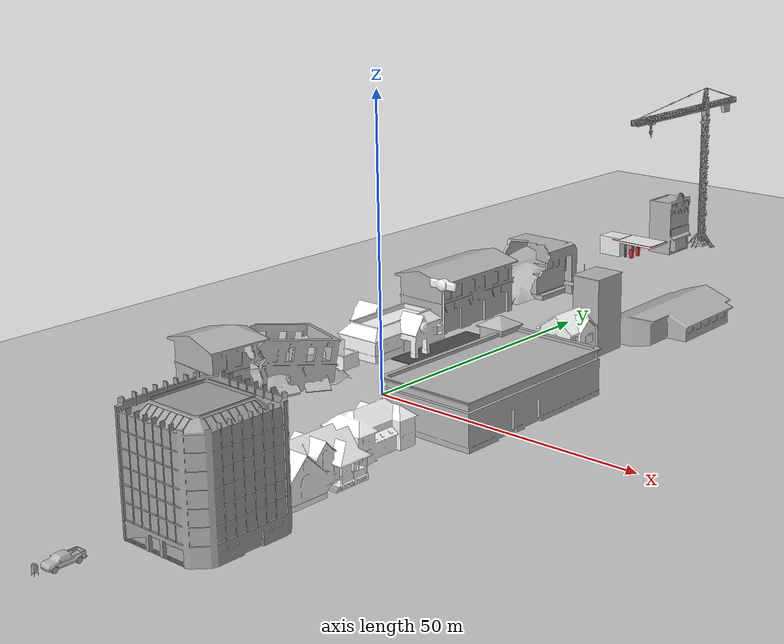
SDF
<sdf version="1.6">
 <world name="default">
  <light name="sun" type="directional">
   <pose>0 0 10 0 -0 0</pose>
   <diffuse>0.8 0.8 0.8 1</diffuse>
   <specular>0.2 0.2 0.2 1</specular>
   <attenuation>
    <range>1000</range>
    <constant>0.9</constant>
    <linear>0.01</linear>
    <quadratic>0.001</quadratic>
   </attenuation>
   <direction>-0.5 0.1 -0.9</direction>
  </light>
  <model name="ground_plane">
   <static>1</static>
   <link name="link">
    <collision name="collision">
     <geometry><plane><normal>0 0 1</normal><size>100 100</size></plane></geometry>
     <surface>
      <contact><collide_bitmask>65535</collide_bitmask></contact>
      <friction><ode><mu>100</mu><mu2>50</mu2></ode></friction>
     </surface>
    </collision>
    <visual name="visual">
     <cast_shadows>0</cast_shadows>
     <geometry><plane><normal>0 0 1</normal><size>100 100</size></plane></geometry>
     <material>
      <script><uri>file://media/materials/scripts/gazebo.material</uri><name>Gazebo/Grey</name></script>
     </material>
    </visual>
   </link>
  </model>
  <gravity>0 0 -9.8</gravity>
  <magnetic_field>6e-06 2.3e-05 -4.2e-05</magnetic_field>
  <atmosphere type="adiabatic"/>
  <physics name="default_physics" default="0" type="ode">
   <max_step_size>0.001</max_step_size>
   <real_time_factor>1</real_time_factor>
   <real_time_update_rate>1000</real_time_update_rate>
  </physics>
  <scene><ambient>0.4 0.4 0.4 1</ambient><background>0.7 0.7 0.7 1</background><shadows>1</shadows></scene>
  <audio><device>default</device></audio>
  <spherical_coordinates>
   <surface_model>EARTH_WGS84</surface_model>
   <latitude_deg>0</latitude_deg>
   <longitude_deg>0</longitude_deg>
   <elevation>0</elevation>
   <heading_deg>0</heading_deg>
  </spherical_coordinates>
  <model name="asphalt_plane">
   <static>1</static>
   <link name="link">
    <collision name="collision"><geometry><box><size>20.0001 20 0.1</size></box></geometry></collision>
    <visual name="visual">
     <cast_shadows>0</cast_shadows>
     <geometry><box><size>20.0001 20 0.1</size></box></geometry>
     <material>
      <script>
       <uri>model://asphalt_plane/materials/scripts</uri>
       <uri>model://asphalt_plane/materials/textures</uri>
       <name>vrc/asphalt</name>
      </script>
     </material>
    </visual>
   </link>
   <pose>-1.05259 23.6145 0 0 -0 0</pose>
  </model>
  <model name="collapsed_fire_station">
   <static>1</static>
   <link name="link">
    <collision name="collision">
     <geometry><mesh><uri>model://collapsed_fire_station/meshes/collapsed_fire_station.dae</uri></mesh></geometry>
    </collision>
    <visual name="visual">
     <geometry><mesh><uri>model://collapsed_fire_station/meshes/collapsed_fire_station.dae</uri></mesh></geometry>
    </visual>
   </link>
   <pose>-17.3392 -9.00542 0 0 -0 1.47459</pose>
  </model>
  <model name="Fast Food">
   <static>1</static>
   <link name="link">
    <pose>0 0 3.15931 0 -0 0</pose>
    <collision name="collision">
     <geometry><mesh><scale>3 3 2</scale><uri>model://fast_food/meshes/fast_food.dae</uri></mesh></geometry>
    </collision>
    <visual name="visual">
     <geometry><mesh><scale>3 3 2</scale><uri>model://fast_food/meshes/fast_food.dae</uri></mesh></geometry>
     <material>
      <script>
       <uri>model://fast_food/materials/scripts</uri>
       <uri>model://fast_food/materials/textures</uri>
       <name>FastFood/Diffuse</name>
      </script>
      <shader type="normal_map_tangent_space"><normal_map>FastFood_Normal.png</normal_map></shader>
     </material>
    </visual>
   </link>
   <pose>-15.0944 18.0139 0 0 -0 1.59755</pose>
  </model>
  <model name="fire_station">
   <static>1</static>
   <link name="link">
    <collision name="main">
     <pose>0 -0.135 5 0 -0 0</pose>
     <geometry><box><size>19.98 9.68 10</size></box></geometry>
    </collision>
    <collision name="front_top">
     <pose>0 4.957 7 0 -0 0</pose>
     <geometry><box><size>20 0.515 6</size></box></geometry>
    </collision>
    <collision name="column_0">
     <pose>9.333 4.957 2 0 -0 0</pose>
     <geometry><box><size>1.315 0.515 4</size></box></geometry>
    </collision>
    <collision name="column_1">
     <pose>3.33 4.957 2 0 -0 0</pose>
     <geometry><box><size>2.63 0.515 4</size></box></geometry>
    </collision>
    <collision name="column_2">
     <pose>-3.33 4.957 2 0 -0 0</pose>
     <geometry><box><size>2.63 0.515 4</size></box></geometry>
    </collision>
    <collision name="column_3">
     <pose>-9.333 4.957 2 0 -0 0</pose>
     <geometry><box><size>1.315 0.515 4</size></box></geometry>
    </collision>
    <collision name="roof_back">
     <pose>0 -2.742 10.467 0.25 -0 0</pose>
     <geometry><box><size>21.47 6.12 0.28</size></box></geometry>
    </collision>
    <collision name="roof_front">
     <pose>0 3.12 10.467 -0.25 0 0</pose>
     <geometry><box><size>21.47 6.12 0.28</size></box></geometry>
    </collision>
    <collision name="roof_base">
     <pose>0 0.188 9.705 0 -0 0</pose>
     <geometry><box><size>21.47 11.86 0.28</size></box></geometry>
    </collision>
    <collision name="roof_filling_0">
     <pose>0 0.188 9.985 0 -0 0</pose>
     <geometry><box><size>21.47 9.53 0.28</size></box></geometry>
    </collision>
    <collision name="roof_filling_1">
     <pose>0 0.188 10.14 0 -0 0</pose>
     <geometry><box><size>21.47 8.41 0.28</size></box></geometry>
    </collision>
    <collision name="roof_filling_2">
     <pose>0 0.188 10.42 0 -0 0</pose>
     <geometry><box><size>21.47 6.25 0.28</size></box></geometry>
    </collision>
    <collision name="roof_filling_3">
     <pose>0 0.188 10.7 0 -0 0</pose>
     <geometry><box><size>21.47 4.05 0.28</size></box></geometry>
    </collision>
    <collision name="roof_filling_4">
     <pose>0 0.188 10.98 0 -0 0</pose>
     <geometry><box><size>21.47 1.83 0.28</size></box></geometry>
    </collision>
    <visual name="visual">
     <geometry><mesh><uri>model://fire_station/meshes/fire_station.dae</uri></mesh></geometry>
    </visual>
   </link>
   <pose>-18.0963 39.0636 0 0 0 -1.57132</pose>
  </model>
  <model name="collapsed_police_station">
   <static>1</static>
   <link name="link">
    <collision name="collision">
     <geometry>
      <mesh><uri>model://collapsed_police_station/meshes/collapsed_police_station.dae</uri></mesh>
     </geometry>
    </collision>
    <visual name="visual">
     <geometry>
      <mesh><uri>model://collapsed_police_station/meshes/collapsed_police_station.dae</uri></mesh>
     </geometry>
    </visual>
   </link>
   <pose>-20.3631 59.9196 0 0 -0 0</pose>
  </model>
  <model name="Gas Station">
   <static>1</static>
   <link name="link">
    <collision name="collision">
     <geometry><mesh><uri>model://gas_station/meshes/gas_station.dae</uri></mesh></geometry>
    </collision>
    <visual name="visual">
     <geometry><mesh><uri>model://gas_station/meshes/gas_station.dae</uri></mesh></geometry>
     <material>
      <script>
       <uri>model://gas_station/materials/scripts</uri>
       <uri>model://gas_station/materials/textures</uri>
       <name>GasStation/Diffuse</name>
      </script>
      <shader type="normal_map_tangent_space"><normal_map>GasStation_Normal.png</normal_map></shader>
     </material>
    </visual>
   </link>
   <pose>-18.2605 96.0927 0 0 -0 0</pose>
  </model>
  <model name="salon">
   <static>1</static>
   <link name="link">
    <collision name="collision">
     <pose>0 0 5.69469 0 -0 0</pose>
     <geometry><box><size>7.21297 5.37875 11.3894</size></box></geometry>
    </collision>
    <visual name="visual">
     <pose>0 -0.903605 0 0 -0 0</pose>
     <geometry><mesh><uri>model://salon/meshes/salon.dae</uri></mesh></geometry>
    </visual>
   </link>
   <pose>-14.8015 105.758 0 0 -0 1.57751</pose>
  </model>
  <model name="tower_crane">
   <static>1</static>
   <link name="link">
    <collision name="collision">
     <geometry><mesh><uri>model://tower_crane/meshes/tower_crane.dae</uri></mesh></geometry>
    </collision>
    <visual name="visual">
     <geometry><mesh><uri>model://tower_crane/meshes/tower_crane.dae</uri></mesh></geometry>
    </visual>
   </link>
   <pose>-11.5222 113.73 0 0 -0 0</pose>
  </model>
  <model name="osrf_first_office">
   <static>1</static>
   <link name="link">
    <collision name="collision">
     <geometry><mesh><uri>model://osrf_first_office/meshes/osrf_first_office.dae</uri></mesh></geometry>
    </collision>
    <visual name="visual">
     <geometry><mesh><uri>model://osrf_first_office/meshes/osrf_first_office.dae</uri></mesh></geometry>
    </visual>
   </link>
   <pose>16.834 57.3287 0 0 0 -1.54713</pose>
  </model>
  <model name="law_office">
   <static>1</static>
   <link name="link">
    <collision name="collision">
     <pose>0 0 6.96244 0 -0 0</pose>
     <geometry><box><size>6.84401 5.43165 13.9249</size></box></geometry>
    </collision>
    <visual name="visual">
     <geometry><mesh><uri>model://law_office/meshes/law_office.dae</uri></mesh></geometry>
    </visual>
   </link>
   <pose>13.1361 40.7074 0 0 0 -1.56398</pose>
  </model>
  <model name="House 3">
   <static>1</static>
   <link name="link">
    <collision name="collision">
     <geometry><mesh><uri>model://house_3/meshes/house_3.dae</uri><scale>1.5 1.5 1.5</scale></mesh></geometry>
    </collision>
    <visual name="visual">
     <geometry><mesh><uri>model://house_3/meshes/house_3.dae</uri><scale>1.5 1.5 1.5</scale></mesh></geometry>
     <material>
      <script>
       <uri>model://house_3/materials/scripts</uri>
       <uri>model://house_3/materials/textures</uri>
       <uri>model://house_1/materials/textures</uri>
       <name>House_3/Diffuse</name>
      </script>
      <shader type="normal_map_tangent_space">
       <normal_map>model://house_1/materials/textures/House_1_Normal.png</normal_map>
      </shader>
     </material>
    </visual>
   </link>
   <pose>13.2762 28.3686 0 0 0 -1.57826</pose>
  </model>
  <model name="grocery_store">
   <static>1</static>
   <link name="link">
    <collision name="collision">
     <pose>0 0 4.04605 0 -0 0</pose>
     <geometry><box><size>32.1985 17.5425 8.09209</size></box></geometry>
    </collision>
    <visual name="visual">
     <pose>0 -1.96155 0 0 -0 0</pose>
     <geometry><mesh><uri>model://grocery_store/meshes/grocery_store.dae</uri></mesh></geometry>
    </visual>
   </link>
   <pose>18.3153 6.14926 0 0 -0 1.56913</pose>
  </model>
  <model name="House 2">
   <static>1</static>
   <link name="link">
    <collision name="collision">
     <geometry><mesh><uri>model://house_2/meshes/house_2.dae</uri><scale>1.5 1.5 1.5</scale></mesh></geometry>
    </collision>
    <visual name="visual">
     <geometry><mesh><uri>model://house_2/meshes/house_2.dae</uri><scale>1.5 1.5 1.5</scale></mesh></geometry>
     <material>
      <script>
       <uri>model://house_2/materials/scripts</uri>
       <uri>model://house_2/materials/textures</uri>
       <uri>model://house_1/materials/textures</uri>
       <name>House_2/Diffuse</name>
      </script>
      <shader type="normal_map_tangent_space">
       <normal_map>model://house_1/materials/textures/House_1_Normal.png</normal_map>
      </shader>
     </material>
    </visual>
   </link>
   <pose>14.6847 -18.9947 0 0 -0 1.56007</pose>
  </model>
  <model name="House 1">
   <static>1</static>
   <link name="link">
    <collision name="collision">
     <geometry><mesh><uri>model://house_1/meshes/house_1.dae</uri><scale>1.5 1.5 1.5</scale></mesh></geometry>
    </collision>
    <visual name="visual">
     <geometry><mesh><uri>model://house_1/meshes/house_1.dae</uri><scale>1.5 1.5 1.5</scale></mesh></geometry>
     <material>
      <script>
       <uri>model://house_1/materials/scripts</uri>
       <uri>model://house_1/materials/textures</uri>
       <name>House_1/Diffuse</name>
      </script>
      <shader type="normal_map_tangent_space"><normal_map>House_1_Normal.png</normal_map></shader>
     </material>
    </visual>
   </link>
   <pose>16.4754 -33.5952 0 0 -0 -1.57514</pose>
  </model>
  <model name="Office Building">
   <static>1</static>
   <link name="link">
    <collision name="collision">
     <geometry><mesh><uri>model://office_building/meshes/office_building.dae</uri></mesh></geometry>
    </collision>
    <visual name="visual">
     <geometry><mesh><uri>model://office_building/meshes/office_building.dae</uri></mesh></geometry>
    </visual>
   </link>
   <pose>17.8527 -51.2466 0 0 -0 0</pose>
  </model>
  <model name="pickup">
   <static>1</static>
   <link name="link">
    <collision name="collision">
     <pose>0 0 0 0 0 -1.5708</pose>
     <geometry><mesh><uri>model://pickup/meshes/pickup.dae</uri></mesh></geometry>
    </collision>
    <visual name="visual">
     <pose>0 0 0 0 0 -1.5708</pose>
     <geometry><mesh><uri>model://pickup/meshes/pickup.dae</uri></mesh></geometry>
    </visual>
   </link>
   <pose>11.6566 -69.3566 0 0 0 -1.57466</pose>
  </model>
  <model name="postbox">
   <static>1</static>
   <link name="link">
    <collision name="collision">
     <geometry><mesh><uri>model://postbox/meshes/postbox.dae</uri></mesh></geometry>
    </collision>
    <visual name="visual"><geometry><mesh><uri>model://postbox/meshes/postbox.dae</uri></mesh></geometry></visual>
   </link>
   <pose>11.1255 -72.9828 0 0 -0 0</pose>
  </model>
 </world>
</sdf>
